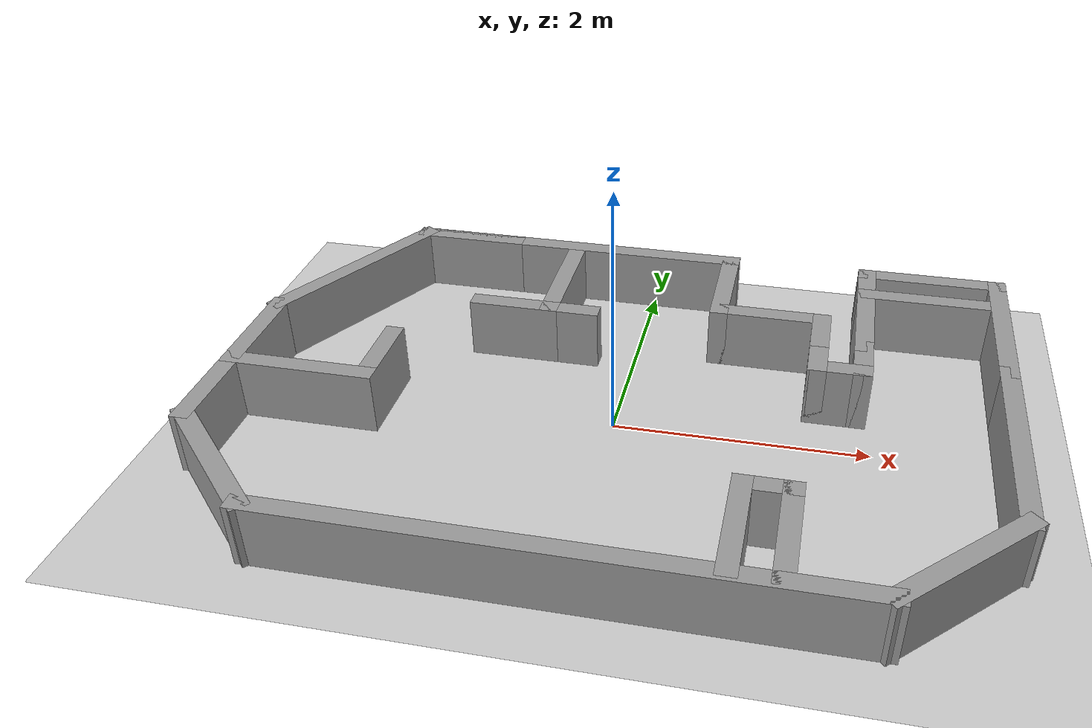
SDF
<sdf version="1.7">
 <world name="default">
  <light name="sun" type="directional">
   <pose>0 0 10 0 -0 0</pose>
   <diffuse>0.8 0.8 0.8 1</diffuse>
   <specular>0.2 0.2 0.2 1</specular>
   <attenuation>
    <range>1000</range>
    <constant>0.9</constant>
    <linear>0.01</linear>
    <quadratic>0.001</quadratic>
   </attenuation>
   <direction>-0.5 0.1 -0.9</direction>
   <spot><inner_angle>0</inner_angle><outer_angle>0</outer_angle><falloff>0</falloff></spot>
  </light>
  <model name="ground_plane">
   <static>1</static>
   <link name="link">
    <collision name="collision">
     <geometry><plane><normal>0 0 1</normal><size>100 100</size></plane></geometry>
     <surface><friction><ode><mu>100</mu><mu2>50</mu2></ode></friction></surface>
    </collision>
    <visual name="visual">
     <cast_shadows>0</cast_shadows>
     <geometry><plane><normal>0 0 1</normal><size>100 100</size></plane></geometry>
     <material>
      <script><uri>file://media/materials/scripts/gazebo.material</uri><name>Gazebo/Grey</name></script>
     </material>
    </visual>
   </link>
  </model>
  <gravity>0 0 -9.8</gravity>
  <magnetic_field>6e-06 2.3e-05 -4.2e-05</magnetic_field>
  <atmosphere type="adiabatic"/>
  <physics type="ode">
   <max_step_size>0.001</max_step_size>
   <real_time_factor>1</real_time_factor>
   <real_time_update_rate>0.0</real_time_update_rate>
   <max_step_size>0.003</max_step_size>
   <ode>
    <solver>
     <type>quick</type>
     <iters>150</iters>
     <precon_iters>0</precon_iters>
     <sor>1.400000</sor>
     <use_dynamic_moi_rescaling>1</use_dynamic_moi_rescaling>
    </solver>
    <constraints>
     <cfm>0.00001</cfm>
     <erp>0.2</erp>
     <contact_max_correcting_vel>2000.000000</contact_max_correcting_vel>
     <contact_surface_layer>0.01000</contact_surface_layer>
    </constraints>
   </ode>
  </physics>
  <scene><ambient>0.4 0.4 0.4 1</ambient><background>0.7 0.7 0.7 1</background><shadows>1</shadows></scene>
  <spherical_coordinates>
   <surface_model>EARTH_WGS84</surface_model>
   <latitude_deg>0</latitude_deg>
   <longitude_deg>0</longitude_deg>
   <elevation>0</elevation>
   <heading_deg>0</heading_deg>
  </spherical_coordinates>
  <model name="TIE23_2">
   <link name="Wall_11">
    <collision name="Wall_11_Collision">
     <geometry><box><size>1.5 0.15 0.5</size></box></geometry>
     <pose>0 0 0.25 0 -0 0</pose>
    </collision>
    <visual name="Wall_11_Visual">
     <pose>0 0 0.25 0 -0 0</pose>
     <geometry><box><size>1.5 0.15 0.5</size></box></geometry>
     <material>
      <script><uri>file://media/materials/scripts/gazebo.material</uri><name>Gazebo/Grey</name></script>
      <ambient>1 1 1 1</ambient>
     </material>
     <meta><layer>0</layer></meta>
    </visual>
    <pose>2.975 1.3023 0 0 -0 1.5708</pose>
   </link>
   <link name="Wall_12">
    <collision name="Wall_12_Collision">
     <geometry><box><size>1.25 0.15 0.5</size></box></geometry>
     <pose>0 0 0.25 0 -0 0</pose>
    </collision>
    <visual name="Wall_12_Visual">
     <pose>0 0 0.25 0 -0 0</pose>
     <geometry><box><size>1.25 0.15 0.5</size></box></geometry>
     <material>
      <script><uri>file://media/materials/scripts/gazebo.material</uri><name>Gazebo/Grey</name></script>
      <ambient>1 1 1 1</ambient>
     </material>
     <meta><layer>0</layer></meta>
    </visual>
    <pose>2.425 1.9773 0 0 -0 3.14159</pose>
   </link>
   <link name="Wall_13">
    <collision name="Wall_13_Collision">
     <geometry><box><size>0.5 0.15 0.5</size></box></geometry>
     <pose>0 0 0.25 0 -0 0</pose>
    </collision>
    <visual name="Wall_13_Visual">
     <pose>0 0 0.25 0 -0 0</pose>
     <geometry><box><size>0.5 0.15 0.5</size></box></geometry>
     <material>
      <script><uri>file://media/materials/scripts/gazebo.material</uri><name>Gazebo/Grey</name></script>
      <ambient>1 1 1 1</ambient>
     </material>
     <meta><layer>0</layer></meta>
    </visual>
    <pose>1.875 1.8023 0 0 -0 -1.5708</pose>
   </link>
   <link name="Wall_14">
    <collision name="Wall_14_Collision">
     <geometry><box><size>1.25 0.15 0.5</size></box></geometry>
     <pose>0 0 0.25 0 -0 0</pose>
    </collision>
    <visual name="Wall_14_Visual">
     <pose>0 0 0.25 0 -0 0</pose>
     <geometry><box><size>1.25 0.15 0.5</size></box></geometry>
     <material>
      <script><uri>file://media/materials/scripts/gazebo.material</uri><name>Gazebo/Grey</name></script>
      <ambient>1 1 1 1</ambient>
     </material>
     <meta><layer>0</layer></meta>
    </visual>
    <pose>2.425 1.6273 0 0 -0 0</pose>
   </link>
   <link name="Wall_16">
    <collision name="Wall_16_Collision">
     <geometry><box><size>1 0.15 0.5</size></box></geometry>
     <pose>0 0 0.25 0 -0 0</pose>
    </collision>
    <visual name="Wall_16_Visual">
     <pose>0 0 0.25 0 -0 0</pose>
     <geometry><box><size>1 0.15 0.5</size></box></geometry>
     <material>
      <script><uri>file://media/materials/scripts/gazebo.material</uri><name>Gazebo/Grey</name></script>
      <ambient>1 1 1 1</ambient>
     </material>
     <meta><layer>0</layer></meta>
    </visual>
    <pose>1.875 1.2023 0 0 -0 -1.5708</pose>
   </link>
   <link name="Wall_18">
    <collision name="Wall_18_Collision">
     <geometry><box><size>0.5 0.15 0.5</size></box></geometry>
     <pose>0 0 0.25 0 -0 0</pose>
    </collision>
    <visual name="Wall_18_Visual">
     <pose>0 0 0.25 0 -0 0</pose>
     <geometry><box><size>0.5 0.15 0.5</size></box></geometry>
     <material>
      <script><uri>file://media/materials/scripts/gazebo.material</uri><name>Gazebo/Grey</name></script>
      <ambient>1 1 1 1</ambient>
     </material>
     <meta><layer>0</layer></meta>
    </visual>
    <pose>1.525 0.952298 0 0 -0 1.5708</pose>
   </link>
   <link name="Wall_19">
    <collision name="Wall_19_Collision">
     <geometry><box><size>1 0.15 0.5</size></box></geometry>
     <pose>0 0 0.25 0 -0 0</pose>
    </collision>
    <visual name="Wall_19_Visual">
     <pose>0 0 0.25 0 -0 0</pose>
     <geometry><box><size>1 0.15 0.5</size></box></geometry>
     <material>
      <script><uri>file://media/materials/scripts/gazebo.material</uri><name>Gazebo/Grey</name></script>
      <ambient>1 1 1 1</ambient>
     </material>
     <meta><layer>0</layer></meta>
    </visual>
    <pose>1.1 1.1273 0 0 -0 3.14159</pose>
   </link>
   <link name="Wall_20">
    <collision name="Wall_20_Collision">
     <geometry><box><size>1 0.15 0.5</size></box></geometry>
     <pose>0 0 0.25 0 -0 0</pose>
    </collision>
    <visual name="Wall_20_Visual">
     <pose>0 0 0.25 0 -0 0</pose>
     <geometry><box><size>1 0.15 0.5</size></box></geometry>
     <material>
      <script><uri>file://media/materials/scripts/gazebo.material</uri><name>Gazebo/Grey</name></script>
      <ambient>1 1 1 1</ambient>
     </material>
     <meta><layer>0</layer></meta>
    </visual>
    <pose>0.675 1.5523 0 0 -0 1.5708</pose>
   </link>
   <link name="Wall_21">
    <collision name="Wall_21_Collision">
     <geometry><box><size>3 0.15 0.5</size></box></geometry>
     <pose>0 0 0.25 0 -0 0</pose>
    </collision>
    <visual name="Wall_21_Visual">
     <pose>0 0 0.25 0 -0 0</pose>
     <geometry><box><size>3 0.15 0.5</size></box></geometry>
     <material>
      <script><uri>file://media/materials/scripts/gazebo.material</uri><name>Gazebo/Grey</name></script>
      <ambient>1 1 1 1</ambient>
     </material>
     <meta><layer>0</layer></meta>
    </visual>
    <pose>-0.75 1.9773 0 0 -0 3.14159</pose>
   </link>
   <link name="Wall_22">
    <collision name="Wall_22_Collision">
     <geometry><box><size>1.85 0.15 0.5</size></box></geometry>
     <pose>0 0 0.25 0 -0 0</pose>
    </collision>
    <visual name="Wall_22_Visual">
     <pose>0 0 0.25 0 -0 0</pose>
     <geometry><box><size>1.85 0.15 0.5</size></box></geometry>
     <material>
      <script><uri>file://media/materials/scripts/gazebo.material</uri><name>Gazebo/Grey</name></script>
      <ambient>1 1 1 1</ambient>
     </material>
     <meta><layer>0</layer></meta>
    </visual>
    <pose>-2.575 1.2273 0 0 -0 -2.06075</pose>
   </link>
   <link name="Wall_27">
    <collision name="Wall_27_Collision">
     <geometry><box><size>1.35208 0.15 0.5</size></box></geometry>
     <pose>0 0 0.25 0 -0 0</pose>
    </collision>
    <visual name="Wall_27_Visual">
     <pose>0 0 0.25 0 -0 0</pose>
     <geometry><box><size>1.35208 0.15 0.5</size></box></geometry>
     <material>
      <script><uri>file://media/materials/scripts/gazebo.material</uri><name>Gazebo/Grey</name></script>
      <ambient>1 1 1 1</ambient>
     </material>
     <meta><layer>0</layer></meta>
    </visual>
    <pose>2.55 -1.5477 0 0 -0 0.785398</pose>
   </link>
   <link name="Wall_29">
    <collision name="Wall_29_Collision">
     <geometry><box><size>4.4 0.15 0.5</size></box></geometry>
     <pose>0 0 0.25 0 -0 0</pose>
    </collision>
    <visual name="Wall_29_Visual">
     <pose>0 0 0.25 0 -0 0</pose>
     <geometry><box><size>4.4 0.15 0.5</size></box></geometry>
     <material>
      <script><uri>file://media/materials/scripts/gazebo.material</uri><name>Gazebo/Grey</name></script>
      <ambient>1 1 1 1</ambient>
     </material>
     <meta><layer>0</layer></meta>
    </visual>
    <pose>0 -1.9727 0 0 -0 0</pose>
   </link>
   <link name="Wall_31">
    <collision name="Wall_31_Collision">
     <geometry><box><size>1.9 0.15 0.5</size></box></geometry>
     <pose>0 0 0.25 0 -0 0</pose>
    </collision>
    <visual name="Wall_31_Visual">
     <pose>0 0 0.25 0 -0 0</pose>
     <geometry><box><size>1.9 0.15 0.5</size></box></geometry>
     <material>
      <script><uri>file://media/materials/scripts/gazebo.material</uri><name>Gazebo/Grey</name></script>
      <ambient>1 1 1 1</ambient>
     </material>
     <meta><layer>0</layer></meta>
    </visual>
    <pose>2.975 -0.247702 0 0 -0 -1.5708</pose>
   </link>
   <link name="Wall_36">
    <collision name="Wall_36_Collision">
     <geometry><box><size>1 0.15 0.5</size></box></geometry>
     <pose>0 0 0.25 0 -0 0</pose>
    </collision>
    <visual name="Wall_36_Visual">
     <pose>0 0 0.25 0 -0 0</pose>
     <geometry><box><size>1 0.15 0.5</size></box></geometry>
     <material>
      <script><uri>file://media/materials/scripts/gazebo.material</uri><name>Gazebo/Grey</name></script>
      <ambient>1 1 1 1</ambient>
     </material>
     <meta><layer>0</layer></meta>
    </visual>
    <pose>1.105 -1.5167 0 0 -0 1.5708</pose>
   </link>
   <link name="Wall_38">
    <collision name="Wall_38_Collision">
     <geometry><box><size>0.5 0.15 0.5</size></box></geometry>
     <pose>0 0 0.25 0 -0 0</pose>
    </collision>
    <visual name="Wall_38_Visual">
     <pose>0 0 0.25 0 -0 0</pose>
     <geometry><box><size>0.5 0.15 0.5</size></box></geometry>
     <material>
      <script><uri>file://media/materials/scripts/gazebo.material</uri><name>Gazebo/Grey</name></script>
      <ambient>1 1 1 1</ambient>
     </material>
     <meta><layer>0</layer></meta>
    </visual>
    <pose>1.28 -1.0917 0 0 -0 0</pose>
   </link>
   <link name="Wall_39">
    <collision name="Wall_39_Collision">
     <geometry><box><size>1 0.15 0.5</size></box></geometry>
     <pose>0 0 0.25 0 -0 0</pose>
    </collision>
    <visual name="Wall_39_Visual">
     <pose>0 0 0.25 0 -0 0</pose>
     <geometry><box><size>1 0.15 0.5</size></box></geometry>
     <material>
      <script><uri>file://media/materials/scripts/gazebo.material</uri><name>Gazebo/Grey</name></script>
      <ambient>1 1 1 1</ambient>
     </material>
     <meta><layer>0</layer></meta>
    </visual>
    <pose>1.455 -1.5167 0 0 -0 -1.5708</pose>
   </link>
   <link name="Wall_41">
    <collision name="Wall_41_Collision">
     <geometry><box><size>1 0.15 0.5</size></box></geometry>
     <pose>0 0 0.25 0 -0 0</pose>
    </collision>
    <visual name="Wall_41_Visual">
     <pose>0 0 0.25 0 -0 0</pose>
     <geometry><box><size>1 0.15 0.5</size></box></geometry>
     <material>
      <script><uri>file://media/materials/scripts/gazebo.material</uri><name>Gazebo/Grey</name></script>
      <ambient>1 1 1 1</ambient>
     </material>
     <meta><layer>0</layer></meta>
    </visual>
    <pose>-1.75 1.9773 0 0 -0 0</pose>
   </link>
   <link name="Wall_43">
    <collision name="Wall_43_Collision">
     <geometry><box><size>0.75 0.15 0.5</size></box></geometry>
     <pose>0 0 0.25 0 -0 0</pose>
    </collision>
    <visual name="Wall_43_Visual">
     <pose>0 0 0.25 0 -0 0</pose>
     <geometry><box><size>0.75 0.15 0.5</size></box></geometry>
     <material>
      <script><uri>file://media/materials/scripts/gazebo.material</uri><name>Gazebo/Grey</name></script>
      <ambient>1 1 1 1</ambient>
     </material>
     <meta><layer>0</layer></meta>
    </visual>
    <pose>-1.025 0.877298 0 0 -0 0</pose>
   </link>
   <link name="Wall_44">
    <collision name="Wall_44_Collision">
     <geometry><box><size>1.25 0.15 0.5</size></box></geometry>
     <pose>0 0 0.25 0 -0 0</pose>
    </collision>
    <visual name="Wall_44_Visual">
     <pose>0 0 0.25 0 -0 0</pose>
     <geometry><box><size>1.25 0.15 0.5</size></box></geometry>
     <material>
      <script><uri>file://media/materials/scripts/gazebo.material</uri><name>Gazebo/Grey</name></script>
      <ambient>1 1 1 1</ambient>
     </material>
     <meta><layer>0</layer></meta>
    </visual>
    <pose>-0.725 1.4273 0 0 -0 1.5708</pose>
   </link>
   <link name="Wall_48">
    <collision name="Wall_48_Collision">
     <geometry><box><size>0.5 0.15 0.5</size></box></geometry>
     <pose>0 0 0.25 0 -0 0</pose>
    </collision>
    <visual name="Wall_48_Visual">
     <pose>0 0 0.25 0 -0 0</pose>
     <geometry><box><size>0.5 0.15 0.5</size></box></geometry>
     <material>
      <script><uri>file://media/materials/scripts/gazebo.material</uri><name>Gazebo/Grey</name></script>
      <ambient>1 1 1 1</ambient>
     </material>
     <meta><layer>0</layer></meta>
    </visual>
    <pose>-0.55 0.877298 0 0 -0 0</pose>
   </link>
   <link name="Wall_51">
    <collision name="Wall_51_Collision">
     <geometry><box><size>1.25 0.15 0.5</size></box></geometry>
     <pose>0 0 0.25 0 -0 0</pose>
    </collision>
    <visual name="Wall_51_Visual">
     <pose>0 0 0.25 0 -0 0</pose>
     <geometry><box><size>1.25 0.15 0.5</size></box></geometry>
     <material>
      <script><uri>file://media/materials/scripts/gazebo.material</uri><name>Gazebo/Grey</name></script>
      <ambient>1 1 1 1</ambient>
     </material>
     <meta><layer>0</layer></meta>
    </visual>
    <pose>-2.425 -0.372702 0 0 -0 3.14159</pose>
   </link>
   <link name="Wall_53">
    <collision name="Wall_53_Collision">
     <geometry><box><size>0.75 0.15 0.5</size></box></geometry>
     <pose>0 0 0.25 0 -0 0</pose>
    </collision>
    <visual name="Wall_53_Visual">
     <pose>0 0 0.25 0 -0 0</pose>
     <geometry><box><size>0.75 0.15 0.5</size></box></geometry>
     <material>
      <script><uri>file://media/materials/scripts/gazebo.material</uri><name>Gazebo/Grey</name></script>
      <ambient>1 1 1 1</ambient>
     </material>
     <meta><layer>0</layer></meta>
    </visual>
    <pose>-1.875 -0.072702 0 0 -0 1.5708</pose>
   </link>
   <link name="Wall_55">
    <collision name="Wall_55_Collision">
     <geometry><box><size>0.5 0.15 0.5</size></box></geometry>
     <pose>0 0 0.25 0 -0 0</pose>
    </collision>
    <visual name="Wall_55_Visual">
     <pose>0 0 0.25 0 -0 0</pose>
     <geometry><box><size>0.5 0.15 0.5</size></box></geometry>
     <material>
      <script><uri>file://media/materials/scripts/gazebo.material</uri><name>Gazebo/Grey</name></script>
      <ambient>1 1 1 1</ambient>
     </material>
     <meta><layer>0</layer></meta>
    </visual>
    <pose>1.525 0.602298 0 0 -0 -1.5708</pose>
   </link>
   <link name="Wall_56">
    <collision name="Wall_56_Collision">
     <geometry><box><size>0.5 0.15 0.5</size></box></geometry>
     <pose>0 0 0.25 0 -0 0</pose>
    </collision>
    <visual name="Wall_56_Visual">
     <pose>0 0 0.25 0 -0 0</pose>
     <geometry><box><size>0.5 0.15 0.5</size></box></geometry>
     <material>
      <script><uri>file://media/materials/scripts/gazebo.material</uri><name>Gazebo/Grey</name></script>
      <ambient>1 1 1 1</ambient>
     </material>
     <meta><layer>0</layer></meta>
    </visual>
    <pose>1.7 0.427298 0 0 -0 0</pose>
   </link>
   <link name="Wall_57">
    <collision name="Wall_57_Collision">
     <geometry><box><size>0.5 0.15 0.5</size></box></geometry>
     <pose>0 0 0.25 0 -0 0</pose>
    </collision>
    <visual name="Wall_57_Visual">
     <pose>0 0 0.25 0 -0 0</pose>
     <geometry><box><size>0.5 0.15 0.5</size></box></geometry>
     <material>
      <script><uri>file://media/materials/scripts/gazebo.material</uri><name>Gazebo/Grey</name></script>
      <ambient>1 1 1 1</ambient>
     </material>
     <meta><layer>0</layer></meta>
    </visual>
    <pose>1.875 0.602298 0 0 -0 1.5708</pose>
   </link>
   <link name="Wall_6">
    <collision name="Wall_6_Collision">
     <geometry><box><size>1.75 0.15 0.5</size></box></geometry>
     <pose>0 0 0.25 0 -0 0</pose>
    </collision>
    <visual name="Wall_6_Visual">
     <pose>0 0 0.25 0 -0 0</pose>
     <geometry><box><size>1.75 0.15 0.5</size></box></geometry>
     <material>
      <script><uri>file://media/materials/scripts/gazebo.material</uri><name>Gazebo/Grey</name></script>
      <ambient>1 1 1 1</ambient>
     </material>
     <meta><layer>0</layer></meta>
    </visual>
    <pose>-2.975 -0.322702 0 0 -0 1.5708</pose>
   </link>
   <link name="Wall_8">
    <collision name="Wall_8_Collision">
     <geometry><box><size>1.35208 0.15 0.5</size></box></geometry>
     <pose>0 0 0.25 0 -0 0</pose>
    </collision>
    <visual name="Wall_8_Visual">
     <pose>0 0 0.25 0 -0 0</pose>
     <geometry><box><size>1.35208 0.15 0.5</size></box></geometry>
     <material>
      <script><uri>file://media/materials/scripts/gazebo.material</uri><name>Gazebo/Grey</name></script>
      <ambient>1 1 1 1</ambient>
     </material>
     <meta><layer>0</layer></meta>
    </visual>
    <pose>-2.55 -1.5477 0 0 -0 -0.785398</pose>
   </link>
   <static>1</static>
  </model>
 </world>
</sdf>
